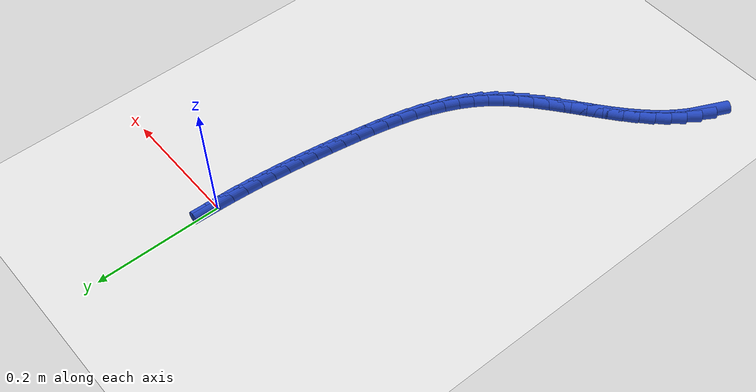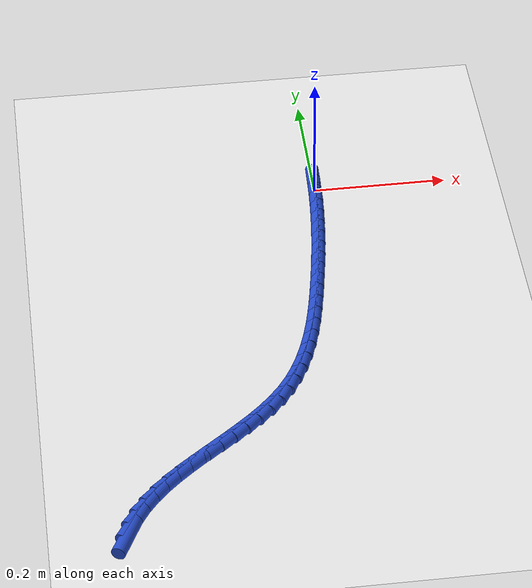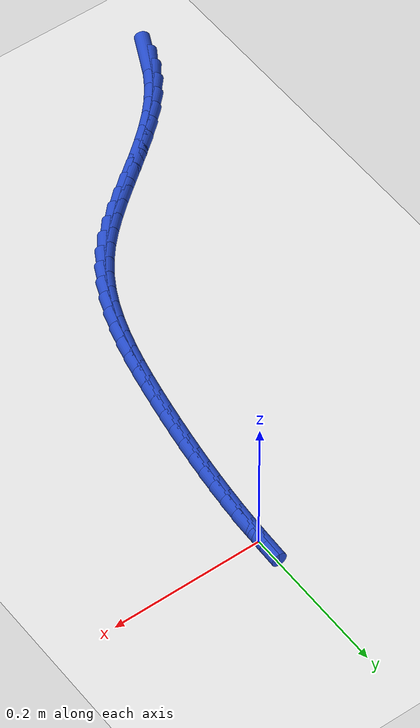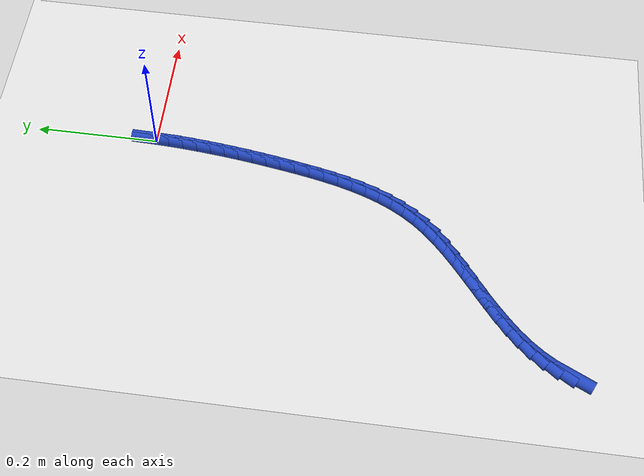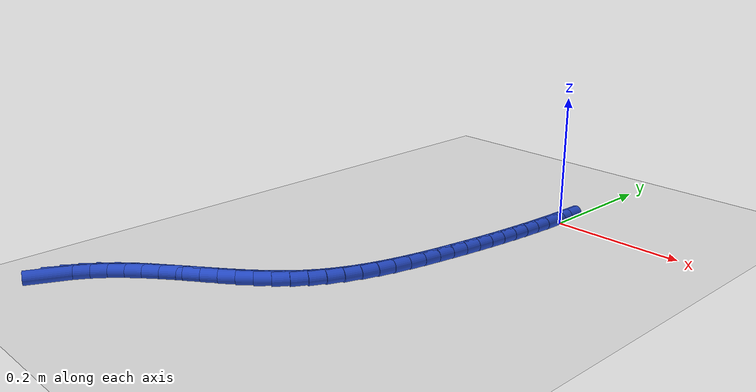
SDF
<sdf version="1.6">
 <world name="default">
  <model name="ground_plane">
   <static>1</static>
   <link name="link">
    <collision name="collision">
     <geometry><plane><normal>0 0 1</normal><size>100 100</size></plane></geometry>
     <surface><friction><ode><mu>100</mu><mu2>50</mu2></ode></friction></surface>
    </collision>
    <visual name="visual">
     <cast_shadows>0</cast_shadows>
     <geometry><plane><normal>0 0 1</normal><size>100 100</size></plane></geometry>
     <material>
      <script><uri>file://media/materials/scripts/gazebo.material</uri><name>Gazebo/WhiteGlow</name></script>
     </material>
    </visual>
   </link>
  </model>
  <model name="line">
   <link name="link_0">
    <pose>4.336808689942018e-18 -2.0816681711721685e-17 0.01 0 1.57 1.5377371730256064</pose>
    <collision name="collision">
     <geometry><cylinder><radius>0.01</radius><length>0.08</length></cylinder></geometry>
    </collision>
    <visual name="visual">
     <material>
      <script><name>Gazebo/Blue</name><uri>file://media/materials/scripts/gazebo.material</uri></script>
     </material>
     <geometry><cylinder><radius>0.01</radius><length>0.08</length></cylinder></geometry>
    </visual>
   </link>
   <link name="link_247">
    <pose>-0.33423282693294054 -0.6731230007233932 0.01 0 1.57 1.120793965697259</pose>
    <collision name="collision">
     <geometry><cylinder><radius>0.01</radius><length>0.08</length></cylinder></geometry>
    </collision>
    <visual name="visual">
     <material>
      <script><name>Gazebo/Blue</name><uri>file://media/materials/scripts/gazebo.material</uri></script>
     </material>
     <geometry><cylinder><radius>0.01</radius><length>0.08</length></cylinder></geometry>
    </visual>
   </link>
   <link name="link_248">
    <pose>-0.32396513887150785 -0.6518673988365465 0.01 0 1.57 1.0098777801256282</pose>
    <collision name="collision">
     <geometry><cylinder><radius>0.01</radius><length>0.08</length></cylinder></geometry>
    </collision>
    <visual name="visual">
     <material>
      <script><name>Gazebo/Blue</name><uri>file://media/materials/scripts/gazebo.material</uri></script>
     </material>
     <geometry><cylinder><radius>0.01</radius><length>0.08</length></cylinder></geometry>
    </visual>
   </link>
   <link name="link_249">
    <pose>-0.31154512745180385 -0.6320975470032314 0.01 0 1.57 0.9106182523998624</pose>
    <collision name="collision">
     <geometry><cylinder><radius>0.01</radius><length>0.08</length></cylinder></geometry>
    </collision>
    <visual name="visual">
     <material>
      <script><name>Gazebo/Blue</name><uri>file://media/materials/scripts/gazebo.material</uri></script>
     </material>
     <geometry><cylinder><radius>0.01</radius><length>0.08</length></cylinder></geometry>
    </visual>
   </link>
   <link name="link_250">
    <pose>-0.2972186737540674 -0.6136449028592282 0.01 0 1.57 0.828070816670941</pose>
    <collision name="collision">
     <geometry><cylinder><radius>0.01</radius><length>0.08</length></cylinder></geometry>
    </collision>
    <visual name="visual">
     <material>
      <script><name>Gazebo/Blue</name><uri>file://media/materials/scripts/gazebo.material</uri></script>
     </material>
     <geometry><cylinder><radius>0.01</radius><length>0.08</length></cylinder></geometry>
    </visual>
   </link>
   <link name="link_251">
    <pose>-0.2812917516047274 -0.5962972017524903 0.01 0 1.57 0.762644517270613</pose>
    <collision name="collision">
     <geometry><cylinder><radius>0.01</radius><length>0.08</length></cylinder></geometry>
    </collision>
    <visual name="visual">
     <material>
      <script><name>Gazebo/Blue</name><uri>file://media/materials/scripts/gazebo.material</uri></script>
     </material>
     <geometry><cylinder><radius>0.01</radius><length>0.08</length></cylinder></geometry>
    </visual>
   </link>
   <link name="link_252">
    <pose>-0.26407033483021247 -0.5798421790309706 0.01 0 1.57 0.7138605663302499</pose>
    <collision name="collision">
     <geometry><cylinder><radius>0.01</radius><length>0.08</length></cylinder></geometry>
    </collision>
    <visual name="visual">
     <material>
      <script><name>Gazebo/Blue</name><uri>file://media/materials/scripts/gazebo.material</uri></script>
     </material>
     <geometry><cylinder><radius>0.01</radius><length>0.08</length></cylinder></geometry>
    </visual>
   </link>
   <link name="link_253">
    <pose>-0.2458603972569523 -0.5640675700426228 0.01 0 1.57 0.6809221988102457</pose>
    <collision name="collision">
     <geometry><cylinder><radius>0.01</radius><length>0.08</length></cylinder></geometry>
    </collision>
    <visual name="visual">
     <material>
      <script><name>Gazebo/Blue</name><uri>file://media/materials/scripts/gazebo.material</uri></script>
     </material>
     <geometry><cylinder><radius>0.01</radius><length>0.08</length></cylinder></geometry>
    </visual>
   </link>
   <link name="link_254">
    <pose>-0.22696791271137529 -0.5487611101353996 0.01 0 1.57 0.6630941904208132</pose>
    <collision name="collision">
     <geometry><cylinder><radius>0.01</radius><length>0.08</length></cylinder></geometry>
    </collision>
    <visual name="visual">
     <material>
      <script><name>Gazebo/Blue</name><uri>file://media/materials/scripts/gazebo.material</uri></script>
     </material>
     <geometry><cylinder><radius>0.01</radius><length>0.08</length></cylinder></geometry>
    </visual>
   </link>
   <link name="link_255">
    <pose>-0.2076988550199104 -0.5337105346572546 0.01 0 1.57 0.6599145722574769</pose>
    <collision name="collision">
     <geometry><cylinder><radius>0.01</radius><length>0.08</length></cylinder></geometry>
    </collision>
    <visual name="visual">
     <material>
      <script><name>Gazebo/Blue</name><uri>file://media/materials/scripts/gazebo.material</uri></script>
     </material>
     <geometry><cylinder><radius>0.01</radius><length>0.08</length></cylinder></geometry>
    </visual>
   </link>
   <link name="link_256">
    <pose>-0.18835919800898637 -0.5187035789561403 0.01 0 1.57 0.6712899639231517</pose>
    <collision name="collision">
     <geometry><cylinder><radius>0.01</radius><length>0.08</length></cylinder></geometry>
    </collision>
    <visual name="visual">
     <material>
      <script><name>Gazebo/Blue</name><uri>file://media/materials/scripts/gazebo.material</uri></script>
     </material>
     <geometry><cylinder><radius>0.01</radius><length>0.08</length></cylinder></geometry>
    </visual>
   </link>
   <link name="link_257">
    <pose>-0.16925491550503216 -0.5035279783800102 0.01 0 1.57 0.6975104690063549</pose>
    <collision name="collision">
     <geometry><cylinder><radius>0.01</radius><length>0.08</length></cylinder></geometry>
    </collision>
    <visual name="visual">
     <material>
      <script><name>Gazebo/Blue</name><uri>file://media/materials/scripts/gazebo.material</uri></script>
     </material>
     <geometry><cylinder><radius>0.01</radius><length>0.08</length></cylinder></geometry>
    </visual>
   </link>
   <link name="link_258">
    <pose>-0.15069198133447653 -0.4879714682768171 0.01 0 1.57 0.7391911822675015</pose>
    <collision name="collision">
     <geometry><cylinder><radius>0.01</radius><length>0.08</length></cylinder></geometry>
    </collision>
    <visual name="visual">
     <material>
      <script><name>Gazebo/Blue</name><uri>file://media/materials/scripts/gazebo.material</uri></script>
     </material>
     <geometry><cylinder><radius>0.01</radius><length>0.08</length></cylinder></geometry>
    </visual>
   </link>
   <link name="link_259">
    <pose>-0.13297636932374846 -0.4718217839945145 0.01 0 1.57 0.7971171108181926</pose>
    <collision name="collision">
     <geometry><cylinder><radius>0.01</radius><length>0.08</length></cylinder></geometry>
    </collision>
    <visual name="visual">
     <material>
      <script><name>Gazebo/Blue</name><uri>file://media/materials/scripts/gazebo.material</uri></script>
     </material>
     <geometry><cylinder><radius>0.01</radius><length>0.08</length></cylinder></geometry>
    </visual>
   </link>
   <link name="link_260">
    <pose>-0.11641405329927675 -0.4548666608810554 0.01 0 1.57 0.8719449825619119</pose>
    <collision name="collision">
     <geometry><cylinder><radius>0.01</radius><length>0.08</length></cylinder></geometry>
    </collision>
    <visual name="visual">
     <material>
      <script><name>Gazebo/Blue</name><uri>file://media/materials/scripts/gazebo.material</uri></script>
     </material>
     <geometry><cylinder><radius>0.01</radius><length>0.08</length></cylinder></geometry>
    </visual>
   </link>
   <link name="link_261">
    <pose>-0.10131100708748984 -0.4368938342843923 0.01 0 1.57 0.961221834024721</pose>
    <collision name="collision">
     <geometry><cylinder><radius>0.01</radius><length>0.08</length></cylinder></geometry>
    </collision>
    <visual name="visual">
     <material>
      <script><name>Gazebo/Blue</name><uri>file://media/materials/scripts/gazebo.material</uri></script>
     </material>
     <geometry><cylinder><radius>0.01</radius><length>0.08</length></cylinder></geometry>
    </visual>
   </link>
   <link name="link_262">
    <pose>-0.08792707021619411 -0.41772698453331647 0.01 0 1.57 1.0477454301286901</pose>
    <collision name="collision">
     <geometry><cylinder><radius>0.01</radius><length>0.08</length></cylinder></geometry>
    </collision>
    <visual name="visual">
     <material>
      <script><name>Gazebo/Blue</name><uri>file://media/materials/scripts/gazebo.material</uri></script>
     </material>
     <geometry><cylinder><radius>0.01</radius><length>0.08</length></cylinder></geometry>
    </visual>
   </link>
   <link name="link_263">
    <pose>-0.07622043453374587 -0.39742481709801547 0.01 0 1.57 1.1241979251644991</pose>
    <collision name="collision">
     <geometry><cylinder><radius>0.01</radius><length>0.08</length></cylinder></geometry>
    </collision>
    <visual name="visual">
     <material>
      <script><name>Gazebo/Blue</name><uri>file://media/materials/scripts/gazebo.material</uri></script>
     </material>
     <geometry><cylinder><radius>0.01</radius><length>0.08</length></cylinder></geometry>
    </visual>
   </link>
   <link name="link_264">
    <pose>-0.06602807680214891 -0.3761404807172676 0.01 0 1.57 1.1904384283526865</pose>
    <collision name="collision">
     <geometry><cylinder><radius>0.01</radius><length>0.08</length></cylinder></geometry>
    </collision>
    <visual name="visual">
     <material>
      <script><name>Gazebo/Blue</name><uri>file://media/materials/scripts/gazebo.material</uri></script>
     </material>
     <geometry><cylinder><radius>0.01</radius><length>0.08</length></cylinder></geometry>
    </visual>
   </link>
   <link name="link_265">
    <pose>-0.057186645048501274 -0.3540273802596771 0.01 0 1.57 1.246768542474106</pose>
    <collision name="collision">
     <geometry><cylinder><radius>0.01</radius><length>0.08</length></cylinder></geometry>
    </collision>
    <visual name="visual">
     <material>
      <script><name>Gazebo/Blue</name><uri>file://media/materials/scripts/gazebo.material</uri></script>
     </material>
     <geometry><cylinder><radius>0.01</radius><length>0.08</length></cylinder></geometry>
    </visual>
   </link>
   <link name="link_266">
    <pose>-0.049532787299901085 -0.3312389205938485 0.01 0 1.57 1.2937060724711924</pose>
    <collision name="collision">
     <geometry><cylinder><radius>0.01</radius><length>0.08</length></cylinder></geometry>
    </collision>
    <visual name="visual">
     <material>
      <script><name>Gazebo/Blue</name><uri>file://media/materials/scripts/gazebo.material</uri></script>
     </material>
     <geometry><cylinder><radius>0.01</radius><length>0.08</length></cylinder></geometry>
    </visual>
   </link>
   <link name="link_267">
    <pose>-0.04290315158344642 -0.307928506588386 0.01 0 1.57 1.3318274747189782</pose>
    <collision name="collision">
     <geometry><cylinder><radius>0.01</radius><length>0.08</length></cylinder></geometry>
    </collision>
    <visual name="visual">
     <material>
      <script><name>Gazebo/Blue</name><uri>file://media/materials/scripts/gazebo.material</uri></script>
     </material>
     <geometry><cylinder><radius>0.01</radius><length>0.08</length></cylinder></geometry>
    </visual>
   </link>
   <link name="link_268">
    <pose>-0.03713438592623534 -0.28424954311189415 0.01 0 1.57 1.3616612325278588</pose>
    <collision name="collision">
     <geometry><cylinder><radius>0.01</radius><length>0.08</length></cylinder></geometry>
    </collision>
    <visual name="visual">
     <material>
      <script><name>Gazebo/Blue</name><uri>file://media/materials/scripts/gazebo.material</uri></script>
     </material>
     <geometry><cylinder><radius>0.01</radius><length>0.08</length></cylinder></geometry>
    </visual>
   </link>
   <link name="link_269">
    <pose>-0.032063138355365915 -0.26035543503297703 0.01 0 1.57 1.3836198298664444</pose>
    <collision name="collision">
     <geometry><cylinder><radius>0.01</radius><length>0.08</length></cylinder></geometry>
    </collision>
    <visual name="visual">
     <material>
      <script><name>Gazebo/Blue</name><uri>file://media/materials/scripts/gazebo.material</uri></script>
     </material>
     <geometry><cylinder><radius>0.01</radius><length>0.08</length></cylinder></geometry>
    </visual>
   </link>
   <link name="link_270">
    <pose>-0.027526056897936114 -0.23639958722023852 0.01 0 1.57 1.3980604019527694</pose>
    <collision name="collision">
     <geometry><cylinder><radius>0.01</radius><length>0.08</length></cylinder></geometry>
    </collision>
    <visual name="visual">
     <material>
      <script><name>Gazebo/Blue</name><uri>file://media/materials/scripts/gazebo.material</uri></script>
     </material>
     <geometry><cylinder><radius>0.01</radius><length>0.08</length></cylinder></geometry>
    </visual>
   </link>
   <link name="link_271">
    <pose>-0.02336194235022244 -0.21253300552014817 0.01 0 1.57 1.4086922475535333</pose>
    <collision name="collision">
     <geometry><cylinder><radius>0.01</radius><length>0.08</length></cylinder></geometry>
    </collision>
    <visual name="visual">
     <material>
      <script><name>Gazebo/Blue</name><uri>file://media/materials/scripts/gazebo.material</uri></script>
     </material>
     <geometry><cylinder><radius>0.01</radius><length>0.08</length></cylinder></geometry>
    </visual>
   </link>
   <link name="link_272">
    <pose>-0.019484471652490058 -0.1888232546333582 0.01 0 1.57 1.419981620387319</pose>
    <collision name="collision">
     <geometry><cylinder><radius>0.01</radius><length>0.08</length></cylinder></geometry>
    </collision>
    <visual name="visual">
     <material>
      <script><name>Gazebo/Blue</name><uri>file://media/materials/scripts/gazebo.material</uri></script>
     </material>
     <geometry><cylinder><radius>0.01</radius><length>0.08</length></cylinder></geometry>
    </visual>
   </link>
   <link name="link_273">
    <pose>-0.015899776757951404 -0.16523486841777668 0.01 0 1.57 1.4321664554147913</pose>
    <collision name="collision">
     <geometry><cylinder><radius>0.01</radius><length>0.08</length></cylinder></geometry>
    </collision>
    <visual name="visual">
     <material>
      <script><name>Gazebo/Blue</name><uri>file://media/materials/scripts/gazebo.material</uri></script>
     </material>
     <geometry><cylinder><radius>0.01</radius><length>0.08</length></cylinder></geometry>
    </visual>
   </link>
   <link name="link_274">
    <pose>-0.012619707250111172 -0.141726009067421 0.01 0 1.57 1.4451956855019983</pose>
    <collision name="collision">
     <geometry><cylinder><radius>0.01</radius><length>0.08</length></cylinder></geometry>
    </collision>
    <visual name="visual">
     <material>
      <script><name>Gazebo/Blue</name><uri>file://media/materials/scripts/gazebo.material</uri></script>
     </material>
     <geometry><cylinder><radius>0.01</radius><length>0.08</length></cylinder></geometry>
    </visual>
   </link>
   <link name="link_275">
    <pose>-0.009656112712474076 -0.11825483877630844 0.01 0 1.57 1.4590072877596485</pose>
    <collision name="collision">
     <geometry><cylinder><radius>0.01</radius><length>0.08</length></cylinder></geometry>
    </collision>
    <visual name="visual">
     <material>
      <script><name>Gazebo/Blue</name><uri>file://media/materials/scripts/gazebo.material</uri></script>
     </material>
     <geometry><cylinder><radius>0.01</radius><length>0.08</length></cylinder></geometry>
    </visual>
   </link>
   <link name="link_276">
    <pose>-0.007020842728544807 -0.09477951973845647 0.01 0 1.57 1.4735290488371005</pose>
    <collision name="collision">
     <geometry><cylinder><radius>0.01</radius><length>0.08</length></cylinder></geometry>
    </collision>
    <visual name="visual">
     <material>
      <script><name>Gazebo/Blue</name><uri>file://media/materials/scripts/gazebo.material</uri></script>
     </material>
     <geometry><cylinder><radius>0.01</radius><length>0.08</length></cylinder></geometry>
    </visual>
   </link>
   <link name="link_277">
    <pose>-0.004725746881828068 -0.07125821414788235 0.01 0 1.57 1.4886796755859057</pose>
    <collision name="collision">
     <geometry><cylinder><radius>0.01</radius><length>0.08</length></cylinder></geometry>
    </collision>
    <visual name="visual">
     <material>
      <script><name>Gazebo/Blue</name><uri>file://media/materials/scripts/gazebo.material</uri></script>
     </material>
     <geometry><cylinder><radius>0.01</radius><length>0.08</length></cylinder></geometry>
    </visual>
   </link>
   <link name="link_278">
    <pose>-0.0027826747558285596 -0.04764908419860345 0.01 0 1.57 1.5043702242880412</pose>
    <collision name="collision">
     <geometry><cylinder><radius>0.01</radius><length>0.08</length></cylinder></geometry>
    </collision>
    <visual name="visual">
     <material>
      <script><name>Gazebo/Blue</name><uri>file://media/materials/scripts/gazebo.material</uri></script>
     </material>
     <geometry><cylinder><radius>0.01</radius><length>0.08</length></cylinder></geometry>
    </visual>
   </link>
   <link name="link_279">
    <pose>-0.0012034759340509367 -0.02391029208463643 0.01 0 1.57 1.5205058002931104</pose>
    <collision name="collision">
     <geometry><cylinder><radius>0.01</radius><length>0.08</length></cylinder></geometry>
    </collision>
    <visual name="visual">
     <material>
      <script><name>Gazebo/Blue</name><uri>file://media/materials/scripts/gazebo.material</uri></script>
     </material>
     <geometry><cylinder><radius>0.01</radius><length>0.08</length></cylinder></geometry>
    </visual>
   </link>
   <link name="link_280">
    <pose>-8.131516293641283e-19 -6.938893903907228e-17 0.01 0 1.57 1.5369874608042728</pose>
    <collision name="collision">
     <geometry><cylinder><radius>0.01</radius><length>0.08</length></cylinder></geometry>
    </collision>
    <visual name="visual">
     <material>
      <script><name>Gazebo/Blue</name><uri>file://media/materials/scripts/gazebo.material</uri></script>
     </material>
     <geometry><cylinder><radius>0.01</radius><length>0.08</length></cylinder></geometry>
    </visual>
   </link>
  </model>
 </world>
</sdf>
